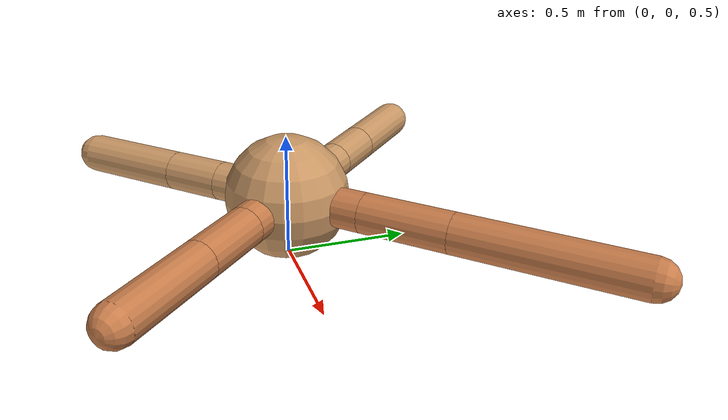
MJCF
<mujoco model="ant">
  <compiler angle="degree" coordinate="local" inertiafromgeom="true" />
  <option integrator="RK4" timestep="0.01" />
  <custom>
    <numeric data="0.0 0.0 0.55 1.0 0.0 0.0 0.0 0.0 1.0 0.0 -1.0 0.0 -1.0 0.0 1.0" name="init_qpos" />
  </custom>
  <default>
    <joint armature="1" damping="1" limited="true" />
    <geom conaffinity="0" condim="3" density="5.0" friction="1.5 0.1 0.1" margin="0.01" rgba="0.8 0.6 0.4 1" />
  </default>
  <worldbody>
    <body name="torso" pos="0 0 0.75">
      <geom name="torso_geom" pos="0 0 0" size="0.25" type="sphere" />

      <body name="front_left_leg" pos="0 0 0">
        <geom fromto="0.0 0.0 0.0 0.2396389737753788 0.2396389737753788 0.0" name="aux_1_geom" size="0.08" type="capsule" rgba=".8 .5 .3 1" />
        <body name="aux_1" pos="0.2396389737753788 0.2396389737753788 0.0">
          <joint axis="0 0 1" name="hip_1" pos="0.0 0.0 0.0" range="-40 40" type="hinge" />
          <geom fromto="0.0 0.0 0.0 0.25369033518830125 0.25369033518830125 0.0" name="left_leg_geom" size="0.08" type="capsule" rgba=".8 .5 .3 1" />
          <body pos="0.25369033518830125 0.25369033518830125 0.0" name="front_left_foot">
            <joint axis="-1 1 0" name="ankle_1" pos="0.0 0.0 0.0" range="30 100" type="hinge" />
            <geom fromto="0.0 0.0 0.0 0.5001040579432088 0.5001040579432088 0.0" name="left_ankle_geom" size="0.08" type="capsule" rgba=".8 .5 .3 1" />
          </body>
        </body>
      </body>
      <body name="front_right_leg" pos="0 0 0">
        <geom fromto="0.0 0.0 0.0 -0.28556683934302685 0.28556683934302685 0.0" name="aux_2_geom" size="0.08" type="capsule" />
        <body name="aux_2" pos="-0.28556683934302685 0.28556683934302685 0.0">
          <joint axis="0 0 1" name="hip_2" pos="0.0 0.0 0.0" range="-40 40" type="hinge" />
          <geom fromto="0.0 0.0 0.0 -0.15967264426503908 0.15967264426503908 0.0" name="right_leg_geom" size="0.08" type="capsule" />
          <body pos="-0.15967264426503908 0.15967264426503908 0.0" name="front_right_foot">
            <joint axis="1 1 0" name="ankle_2" pos="0.0 0.0 0.0" range="-100 -30" type="hinge" />
            <geom fromto="0.0 0.0 0.0 -0.2635207848631857 0.2635207848631857 0.0" name="right_ankle_geom" size="0.08" type="capsule" />
          </body>
        </body>
      </body>
      <body name="left_back_leg" pos="0 0 0">
        <geom fromto="0.0 0.0 0.0 -0.21974955516214856 -0.21974955516214856 0.0" name="aux_3_geom" size="0.08" type="capsule" />
        <body name="aux_3" pos="-0.21974955516214856 -0.21974955516214856 0.0">
          <joint axis="0 0 1" name="hip_3" pos="0.0 0.0 0.0" range="-40 40" type="hinge" />
          <geom fromto="0.0 0.0 0.0 -0.16446072664932654 -0.16446072664932654 0.0" name="back_leg_geom" size="0.08" type="capsule" />
          <body pos="-0.16446072664932654 -0.16446072664932654 0.0" name="left_back_foot">
            <joint axis="-1 1 0" name="ankle_3" pos="0.0 0.0 0.0" range="-100 -30" type="hinge" />
            <geom fromto="0.0 0.0 0.0 -0.30581012871865765 -0.30581012871865765 0.0" name="third_ankle_geom" size="0.08" type="capsule" />
          </body>
        </body>
      </body>
      <body name="right_back_leg" pos="0 0 0">
        <geom fromto="0.0 0.0 0.0 0.21736375529148938 -0.21736375529148938 0.0" name="aux_4_geom" size="0.08" type="capsule" rgba=".8 .5 .3 1" />
        <body name="aux_4" pos="0.21736375529148938 -0.21736375529148938 0.0">
          <joint axis="0 0 1" name="hip_4" pos="0.0 0.0 0.0" range="-40 40" type="hinge" />
          <geom fromto="0.0 0.0 0.0 0.20098934787303763 -0.20098934787303763 0.0" name="rightback_leg_geom" size="0.08" type="capsule" rgba=".8 .5 .3 1" />
          <body pos="0.20098934787303763 -0.20098934787303763 0.0" name="right_back_foot">
            <joint axis="1 1 0" name="ankle_4" pos="0.0 0.0 0.0" range="30 100" type="hinge" />
            <geom fromto="0.0 0.0 0.0 0.30594429068195494 -0.30594429068195494 0.0" name="fourth_ankle_geom" size="0.08" type="capsule" rgba=".8 .5 .3 1" />
          </body>
        </body>
      </body>
    </body>
  </worldbody>
  <actuator>
    <motor ctrllimited="true" ctrlrange="-1.0 1.0" joint="hip_4" gear="150" />
    <motor ctrllimited="true" ctrlrange="-1.0 1.0" joint="ankle_4" gear="150" />
    <motor ctrllimited="true" ctrlrange="-1.0 1.0" joint="hip_1" gear="150" />
    <motor ctrllimited="true" ctrlrange="-1.0 1.0" joint="ankle_1" gear="150" />
    <motor ctrllimited="true" ctrlrange="-1.0 1.0" joint="hip_2" gear="150" />
    <motor ctrllimited="true" ctrlrange="-1.0 1.0" joint="ankle_2" gear="150" />
    <motor ctrllimited="true" ctrlrange="-1.0 1.0" joint="hip_3" gear="150" />
    <motor ctrllimited="true" ctrlrange="-1.0 1.0" joint="ankle_3" gear="150" />
  </actuator>
</mujoco>
